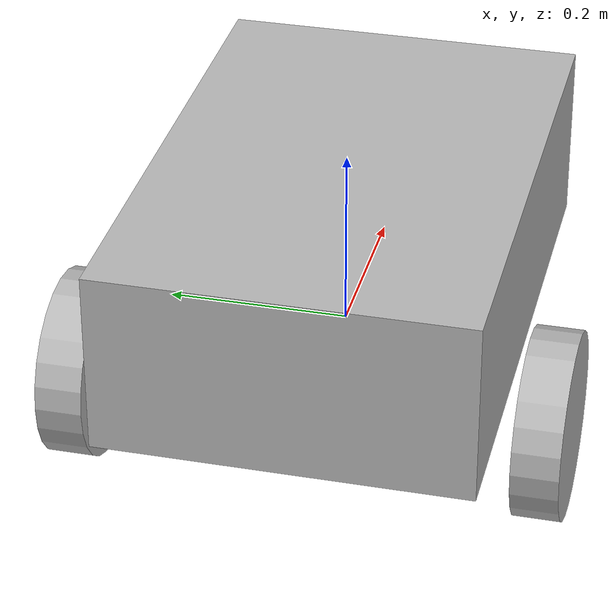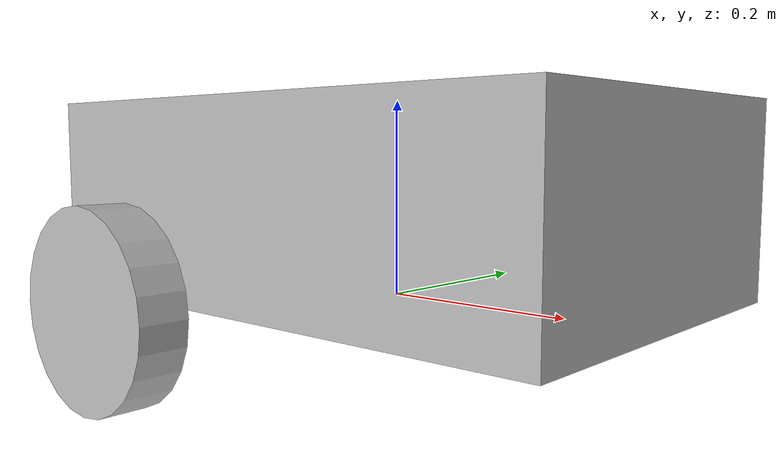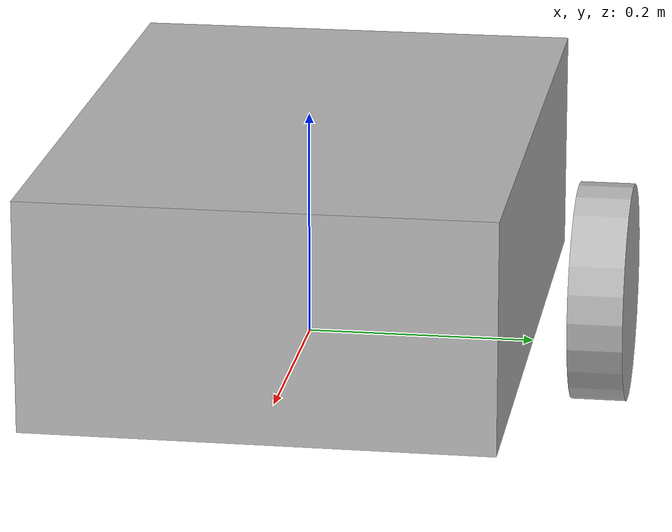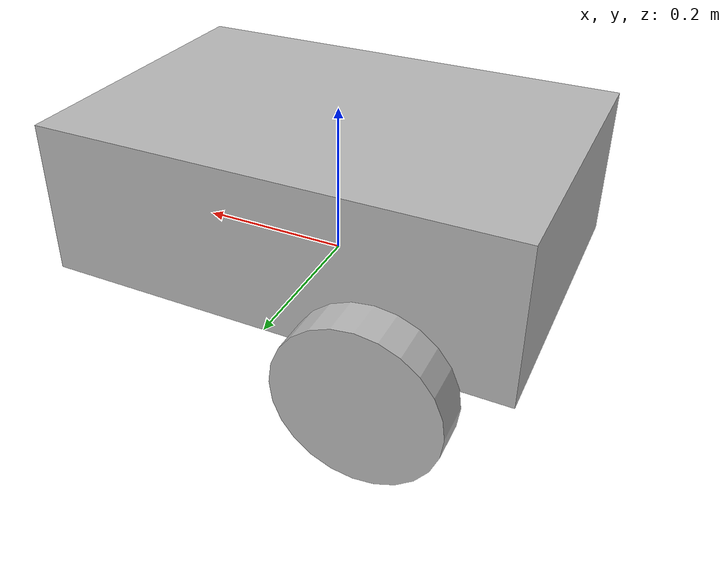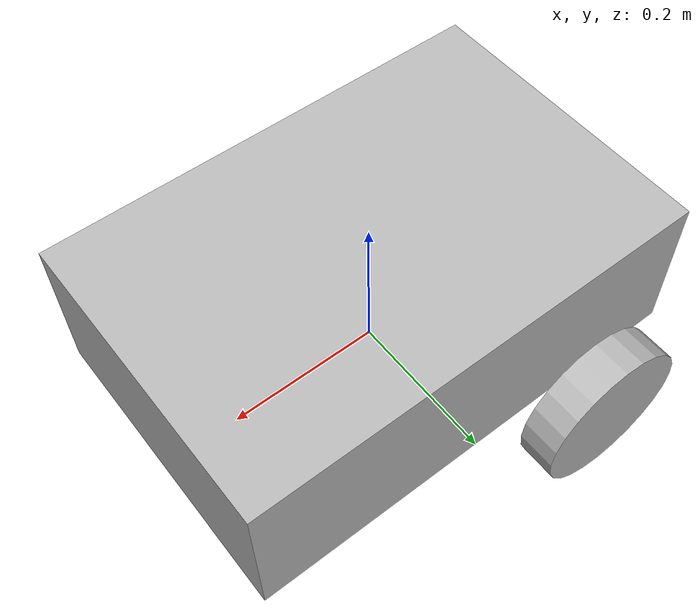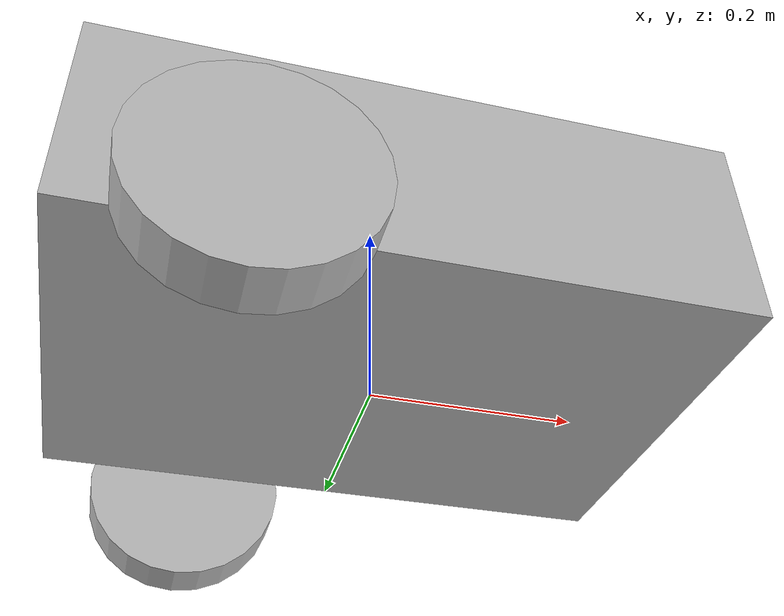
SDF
<?xml version='1.0'?>
<sdf version='1.8'>
  <model name='ball_hitting_robot_gz'>
    <static>false</static>

    <!-- Minimal visual/collision links copied from URDF to provide
         a simulation model. For TF/URDF maintain robot_state_publisher. -->
    <link name='base_link'>
      <pose>0 0 0.1 0 0 0</pose>
      <inertial>
        <mass>20.0</mass>
      </inertial>
      <visual name='visual'>
        <geometry>
          <box>
            <size>0.6 0.4 0.2</size>
          </box>
        </geometry>
      </visual>
      <collision name='collision'>
        <geometry>
          <box>
            <size>0.6 0.4 0.2</size>
          </box>
        </geometry>
      </collision>
    </link>

    <link name='left_wheel'>
      <pose>-0.15 0.25 0 1.5707963 0 0</pose>
      <visual name='left_wheel_visual'>
        <geometry>
          <cylinder>
            <radius>0.1</radius>
            <length>0.05</length>
          </cylinder>
        </geometry>
      </visual>
      <collision name='left_wheel_collision'>
        <geometry>
          <cylinder>
            <radius>0.1</radius>
            <length>0.05</length>
          </cylinder>
        </geometry>
          <surface>
            <friction>
              <ode>
                <mu>1.0</mu>
                <mu2>1.0</mu2>
              </ode>
            </friction>
          </surface>
      </collision>
    </link>

    <link name='right_wheel'>
      <pose>-0.15 -0.25 0 1.5707963 0 0</pose>
      <visual name='right_wheel_visual'>
        <geometry>
          <cylinder>
            <radius>0.1</radius>
            <length>0.05</length>
          </cylinder>
        </geometry>
      </visual>
      <collision name='right_wheel_collision'>
        <geometry>
          <cylinder>
            <radius>0.1</radius>
            <length>0.05</length>
          </cylinder>
        </geometry>
          <surface>
            <friction>
              <ode>
                <mu>1.0</mu>
                <mu2>1.0</mu2>
              </ode>
            </friction>
          </surface>
      </collision>
    </link>

    <link name='camera_link'>
      <pose>0.3 0 0.15 0 0 0</pose>
      <!-- Camera sensor attached below -->
    </link>

    <!-- Joints (minimal placeholders so diff drive plugin can actuate) -->
    <joint name='left_wheel_joint' type='revolute'>
      <parent>base_link</parent>
      <child>left_wheel</child>
      <axis>
        <xyz>0 1 0</xyz>
      </axis>
    </joint>

    <joint name='right_wheel_joint' type='revolute'>
      <parent>base_link</parent>
      <child>right_wheel</child>
      <axis>
        <xyz>0 1 0</xyz>
      </axis>
    </joint>

    <link name='camera_link_sensor'>
      <pose>0.3 0 0.15 0 0 0</pose>
      <sensor name='camera_sensor' type='camera'>
        <always_on>1</always_on>
        <update_rate>30</update_rate>
        <camera>
          <horizontal_fov>1.3962634</horizontal_fov>
          <image>
            <width>640</width>
            <height>480</height>
            <format>R8G8B8</format>
          </image>
          <clip>
            <near>0.1</near>
            <far>100</far>
          </clip>
        </camera>
        <topic>/camera/image_raw</topic>
      </sensor>
    </link>

    <plugin name='ignition::gazebo::systems::DiffDrive' filename='libignition-gazebo6-diff-drive-system.so'>
      <left_joint>left_wheel_joint</left_joint>
      <right_joint>right_wheel_joint</right_joint>
      <wheel_separation>0.5</wheel_separation>
      <wheel_radius>0.1</wheel_radius>
      <topic>/cmd_vel</topic>
      <odom_topic>/odom</odom_topic>
      <odom_frame>odom</odom_frame>
      <base_frame>base_link</base_frame>
    </plugin>

    <!-- Ensure sensors are processed by Gazebo (camera, etc.) -->
    <plugin name='ignition::gazebo::systems::Sensors' filename='libignition-gazebo6-sensors-system.so'/>

  </model>
</sdf>
